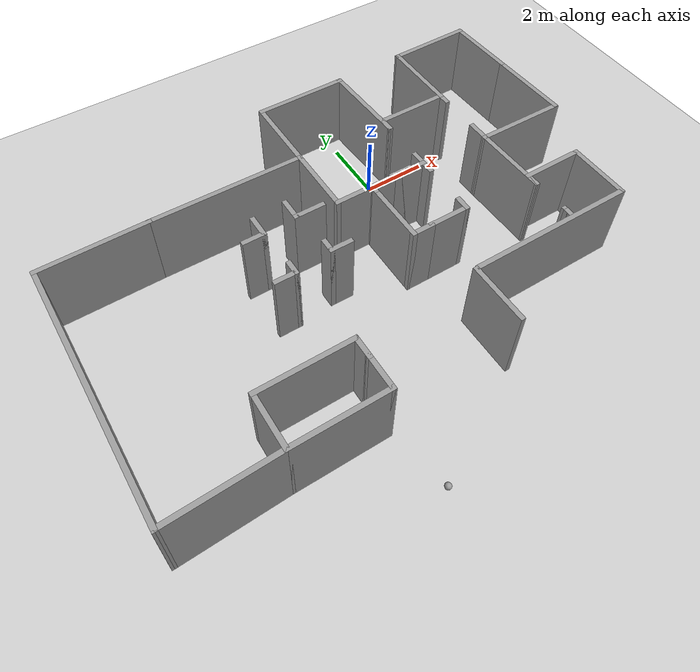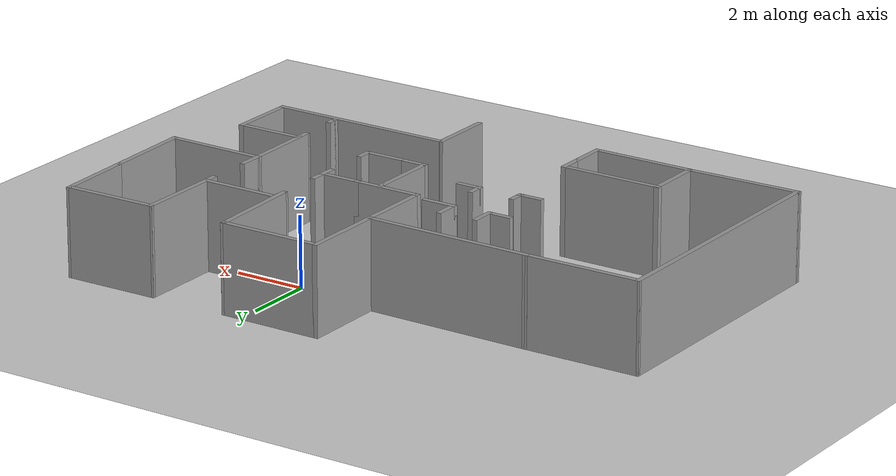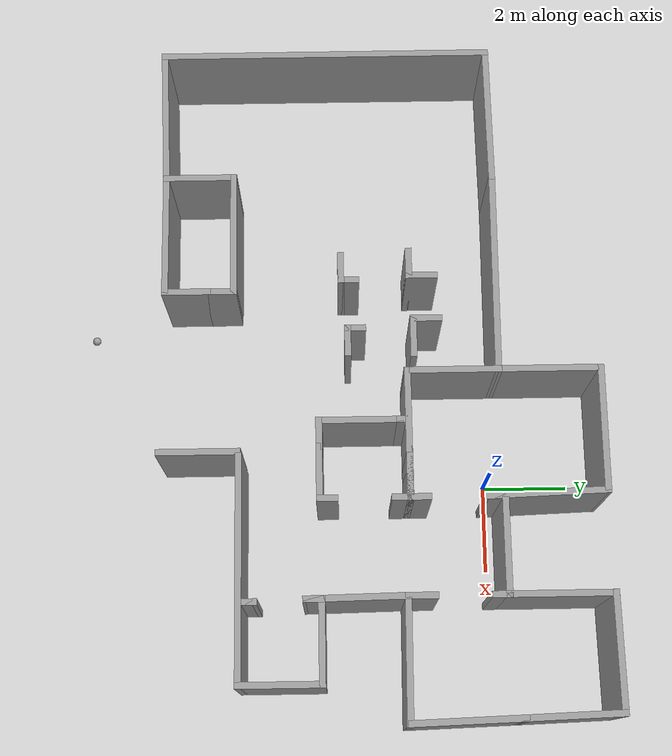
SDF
<sdf version="1.6">
 <world name="default">
  <light name="sun" type="directional">
   <pose>0 0 10 0 -0 0</pose>
   <diffuse>0.8 0.8 0.8 1</diffuse>
   <specular>0.2 0.2 0.2 1</specular>
   <attenuation>
    <range>1000</range>
    <constant>0.9</constant>
    <linear>0.01</linear>
    <quadratic>0.001</quadratic>
   </attenuation>
   <direction>-0.5 0.1 -0.9</direction>
  </light>
  <model name="ground_plane">
   <static>1</static>
   <link name="link">
    <collision name="collision">
     <geometry><plane><normal>0 0 1</normal><size>100 100</size></plane></geometry>
     <surface>
      <contact><collide_bitmask>65535</collide_bitmask></contact>
      <friction><ode><mu>100</mu><mu2>50</mu2></ode></friction>
     </surface>
    </collision>
    <visual name="visual">
     <cast_shadows>0</cast_shadows>
     <geometry><plane><normal>0 0 1</normal><size>100 100</size></plane></geometry>
     <material>
      <script><uri>file://media/materials/scripts/gazebo.material</uri><name>Gazebo/Grey</name></script>
     </material>
    </visual>
   </link>
  </model>
  <gravity>0 0 -9.8</gravity>
  <magnetic_field>6e-06 2.3e-05 -4.2e-05</magnetic_field>
  <atmosphere type="adiabatic"/>
  <physics name="default_physics" default="0" type="ode">
   <max_step_size>0.001</max_step_size>
   <real_time_factor>1</real_time_factor>
   <real_time_update_rate>1000</real_time_update_rate>
  </physics>
  <scene><ambient>0.4 0.4 0.4 1</ambient><background>0.7 0.7 0.7 1</background><shadows>1</shadows></scene>
  <audio><device>default</device></audio>
  <spherical_coordinates>
   <surface_model>EARTH_WGS84</surface_model>
   <latitude_deg>0</latitude_deg>
   <longitude_deg>0</longitude_deg>
   <elevation>0</elevation>
   <heading_deg>0</heading_deg>
  </spherical_coordinates>
  <model name="room1">
   <pose>-2.39226 -2.438 0 0 -0 0</pose>
   <link name="Wall_10">
    <collision name="Wall_10_Collision">
     <geometry><box><size>3 0.15 2.5</size></box></geometry>
     <pose>0 0 1.25 0 -0 0</pose>
    </collision>
    <visual name="Wall_10_Visual">
     <pose>0 0 1.25 0 -0 0</pose>
     <geometry><box><size>3 0.15 2.5</size></box></geometry>
     <material>
      <script><uri>file://media/materials/scripts/gazebo.material</uri><name>Gazebo/Grey</name></script>
      <ambient>1 1 1 1</ambient>
     </material>
     <meta><layer>0</layer></meta>
    </visual>
    <pose>-3.34611 -3.4198 0 0 -0 0</pose>
   </link>
   <link name="Wall_100">
    <collision name="Wall_100_Collision">
     <geometry><box><size>3 0.15 2.5</size></box></geometry>
     <pose>0 0 1.25 0 -0 0</pose>
    </collision>
    <visual name="Wall_100_Visual">
     <pose>0 0 1.25 0 -0 0</pose>
     <geometry><box><size>3 0.15 2.5</size></box></geometry>
     <material>
      <script><uri>file://media/materials/scripts/gazebo.material</uri><name>Gazebo/Grey</name></script>
      <ambient>1 1 1 1</ambient>
     </material>
     <meta><layer>0</layer></meta>
    </visual>
    <pose>-3.34611 -5.0198 0 0 -0 0</pose>
   </link>
   <link name="Wall_101">
    <collision name="Wall_101_Collision">
     <geometry><box><size>1.15 0.15 2.5</size></box></geometry>
     <pose>0 0 1.25 0 -0 0</pose>
    </collision>
    <visual name="Wall_101_Visual">
     <pose>0 0 1.25 0 -0 0</pose>
     <geometry><box><size>1.15 0.15 2.5</size></box></geometry>
     <material>
      <script><uri>file://media/materials/scripts/gazebo.material</uri><name>Gazebo/Grey</name></script>
      <ambient>1 1 1 1</ambient>
     </material>
     <meta><layer>0</layer></meta>
    </visual>
    <pose>-1.92111 -4.5198 0 0 -0 1.5708</pose>
   </link>
   <link name="Wall_103">
    <collision name="Wall_103_Collision">
     <geometry><box><size>4.90013 0.15 2.5</size></box></geometry>
     <pose>0 0 1.25 0 -0 0</pose>
    </collision>
    <visual name="Wall_103_Visual">
     <pose>0 0 1.25 0 -0 0</pose>
     <geometry><box><size>4.90013 0.15 2.5</size></box></geometry>
     <material>
      <script><uri>file://media/materials/scripts/gazebo.material</uri><name>Gazebo/Grey</name></script>
      <ambient>1 1 1 1</ambient>
     </material>
     <meta><layer>0</layer></meta>
    </visual>
    <pose>-2.33297 2.70219 0 0 -0 -0.007364</pose>
   </link>
   <link name="Wall_11">
    <collision name="Wall_11_Collision">
     <geometry><box><size>0.75 0.15 2.5</size></box></geometry>
     <pose>0 0 1.25 0 -0 0</pose>
    </collision>
    <visual name="Wall_11_Visual">
     <pose>0 0 1.25 0 -0 0</pose>
     <geometry><box><size>0.75 0.15 2.5</size></box></geometry>
     <material>
      <script><uri>file://media/materials/scripts/gazebo.material</uri><name>Gazebo/Grey</name></script>
      <ambient>1 1 1 1</ambient>
     </material>
     <meta><layer>0</layer></meta>
    </visual>
    <pose>-1.92111 -3.7198 0 0 -0 -1.5708</pose>
   </link>
   <link name="Wall_16">
    <collision name="Wall_16_Collision">
     <geometry><box><size>7.93882 0.15 2.5</size></box></geometry>
     <pose>0 0 1.25 0 -0 0</pose>
    </collision>
    <visual name="Wall_16_Visual">
     <pose>0 0 1.25 0 -0 0</pose>
     <geometry><box><size>7.93882 0.15 2.5</size></box></geometry>
     <material>
      <script><uri>file://media/materials/scripts/gazebo.material</uri><name>Gazebo/Grey</name></script>
      <ambient>1 1 1 1</ambient>
     </material>
     <meta><layer>0</layer></meta>
    </visual>
    <pose>-7.95796 -1.20971 0 0 -0 1.5708</pose>
   </link>
   <link name="Wall_17">
    <collision name="Wall_17_Collision">
     <geometry><box><size>3.40019 0.15 2.5</size></box></geometry>
     <pose>0 0 1.25 0 -0 0</pose>
    </collision>
    <visual name="Wall_17_Visual">
     <pose>0 0 1.25 0 -0 0</pose>
     <geometry><box><size>3.40019 0.15 2.5</size></box></geometry>
     <material>
      <script><uri>file://media/materials/scripts/gazebo.material</uri><name>Gazebo/Grey</name></script>
      <ambient>1 1 1 1</ambient>
     </material>
     <meta><layer>0</layer></meta>
    </visual>
    <pose>-6.33296 2.70219 0 0 -0 0.010763</pose>
   </link>
   <link name="Wall_19">
    <collision name="Wall_19_Collision">
     <geometry><box><size>1.75 0.15 2.5</size></box></geometry>
     <pose>0 0 1.25 0 -0 0</pose>
    </collision>
    <visual name="Wall_19_Visual">
     <pose>0 0 1.25 0 -0 0</pose>
     <geometry><box><size>1.75 0.15 2.5</size></box></geometry>
     <material>
      <script><uri>file://media/materials/scripts/gazebo.material</uri><name>Gazebo/Grey</name></script>
      <ambient>1 1 1 1</ambient>
     </material>
     <meta><layer>0</layer></meta>
    </visual>
    <pose>-4.77111 -4.2198 0 0 -0 -1.5708</pose>
   </link>
   <link name="Wall_23">
    <collision name="Wall_23_Collision">
     <geometry><box><size>2 0.15 2.5</size></box></geometry>
     <pose>0 0 1.25 0 -0 0</pose>
    </collision>
    <visual name="Wall_23_Visual">
     <pose>0 0 1.25 0 -0 0</pose>
     <geometry><box><size>2 0.15 2.5</size></box></geometry>
     <material>
      <script><uri>file://media/materials/scripts/gazebo.material</uri><name>Gazebo/Grey</name></script>
      <ambient>1 1 1 1</ambient>
     </material>
     <meta><layer>0</layer></meta>
    </visual>
    <pose>6.1676 -1.44342 0 0 -0 0</pose>
   </link>
   <link name="Wall_24">
    <collision name="Wall_24_Collision">
     <geometry><box><size>2 0.15 2.5</size></box></geometry>
     <pose>0 0 1.25 0 -0 0</pose>
    </collision>
    <visual name="Wall_24_Visual">
     <pose>0 0 1.25 0 -0 0</pose>
     <geometry><box><size>2 0.15 2.5</size></box></geometry>
     <material>
      <script><uri>file://media/materials/scripts/gazebo.material</uri><name>Gazebo/Grey</name></script>
      <ambient>1 1 1 1</ambient>
     </material>
     <meta><layer>0</layer></meta>
    </visual>
    <pose>7.0926 -2.36842 0 0 -0 -1.5708</pose>
   </link>
   <link name="Wall_25">
    <collision name="Wall_25_Collision">
     <geometry><box><size>5.25 0.15 2.5</size></box></geometry>
     <pose>0 0 1.25 0 -0 0</pose>
    </collision>
    <visual name="Wall_25_Visual">
     <pose>0 0 1.25 0 -0 0</pose>
     <geometry><box><size>5.25 0.15 2.5</size></box></geometry>
     <material>
      <script><uri>file://media/materials/scripts/gazebo.material</uri><name>Gazebo/Grey</name></script>
      <ambient>1 1 1 1</ambient>
     </material>
     <meta><layer>0</layer></meta>
    </visual>
    <pose>4.5426 -3.29342 0 0 -0 3.14159</pose>
   </link>
   <link name="Wall_27">
    <collision name="Wall_27_Collision">
     <geometry><box><size>0.5 0.15 2.5</size></box></geometry>
     <pose>0 0 1.25 0 -0 0</pose>
    </collision>
    <visual name="Wall_27_Visual">
     <pose>0 0 1.25 0 -0 0</pose>
     <geometry><box><size>0.5 0.15 2.5</size></box></geometry>
     <material>
      <script><uri>file://media/materials/scripts/gazebo.material</uri><name>Gazebo/Grey</name></script>
      <ambient>1 1 1 1</ambient>
     </material>
     <meta><layer>0</layer></meta>
    </visual>
    <pose>5.2426 -1.61842 0 0 -0 -1.5708</pose>
   </link>
   <link name="Wall_33">
    <collision name="Wall_33_Collision">
     <geometry><box><size>0.25 0.15 2.5</size></box></geometry>
     <pose>0 0 1.25 0 -0 0</pose>
    </collision>
    <visual name="Wall_33_Visual">
     <pose>0 0 1.25 0 -0 0</pose>
     <geometry><box><size>0.25 0.15 2.5</size></box></geometry>
     <material>
      <script><uri>file://media/materials/scripts/gazebo.material</uri><name>Gazebo/Grey</name></script>
      <ambient>1 1 1 1</ambient>
     </material>
     <meta><layer>0</layer></meta>
    </visual>
    <pose>5.28567 -2.99757 0 0 -0 -1.5708</pose>
   </link>
   <link name="Wall_34">
    <collision name="Wall_34_Collision">
     <geometry><box><size>0.25 0.15 2.5</size></box></geometry>
     <pose>0 0 1.25 0 -0 0</pose>
    </collision>
    <visual name="Wall_34_Visual">
     <pose>0 0 1.25 0 -0 0</pose>
     <geometry><box><size>0.25 0.15 2.5</size></box></geometry>
     <material>
      <script><uri>file://media/materials/scripts/gazebo.material</uri><name>Gazebo/Grey</name></script>
      <ambient>1 1 1 1</ambient>
     </material>
     <meta><layer>0</layer></meta>
    </visual>
    <pose>5.28567 -3.09757 0 0 -0 -1.5708</pose>
   </link>
   <link name="Wall_36">
    <collision name="Wall_36_Collision">
     <geometry><box><size>2.41743 0.15 2.5</size></box></geometry>
     <pose>0 0 1.25 0 -0 0</pose>
    </collision>
    <visual name="Wall_36_Visual">
     <pose>0 0 1.25 0 -0 0</pose>
     <geometry><box><size>2.41743 0.15 2.5</size></box></geometry>
     <material>
      <script><uri>file://media/materials/scripts/gazebo.material</uri><name>Gazebo/Grey</name></script>
      <ambient>1 1 1 1</ambient>
     </material>
     <meta><layer>0</layer></meta>
    </visual>
    <pose>5.22138 -0.659903 0 0 -0 1.58952</pose>
   </link>
   <link name="Wall_37">
    <collision name="Wall_37_Collision">
     <geometry><box><size>2.90786 0.15 2.5</size></box></geometry>
     <pose>0 0 1.25 0 -0 0</pose>
    </collision>
    <visual name="Wall_37_Visual">
     <pose>0 0 1.25 0 -0 0</pose>
     <geometry><box><size>2.90786 0.15 2.5</size></box></geometry>
     <material>
      <script><uri>file://media/materials/scripts/gazebo.material</uri><name>Gazebo/Grey</name></script>
      <ambient>1 1 1 1</ambient>
     </material>
     <meta><layer>0</layer></meta>
    </visual>
    <pose>6.57882 0.460494 0 0 -0 -0.009517</pose>
   </link>
   <link name="Wall_38">
    <collision name="Wall_38_Collision">
     <geometry><box><size>2.63851 0.15 2.5</size></box></geometry>
     <pose>0 0 1.25 0 -0 0</pose>
    </collision>
    <visual name="Wall_38_Visual">
     <pose>0 0 1.25 0 -0 0</pose>
     <geometry><box><size>2.63851 0.15 2.5</size></box></geometry>
     <material>
      <script><uri>file://media/materials/scripts/gazebo.material</uri><name>Gazebo/Grey</name></script>
      <ambient>1 1 1 1</ambient>
     </material>
     <meta><layer>0</layer></meta>
    </visual>
    <pose>7.91637 1.71106 0 0 -0 1.60384</pose>
   </link>
   <link name="Wall_44">
    <collision name="Wall_44_Collision">
     <geometry><box><size>1.93882 0.15 2.5</size></box></geometry>
     <pose>0 0 1.25 0 -0 0</pose>
    </collision>
    <visual name="Wall_44_Visual">
     <pose>0 0 1.25 0 -0 0</pose>
     <geometry><box><size>1.93882 0.15 2.5</size></box></geometry>
     <material>
      <script><uri>file://media/materials/scripts/gazebo.material</uri><name>Gazebo/Grey</name></script>
      <ambient>1 1 1 1</ambient>
     </material>
     <meta><layer>0</layer></meta>
    </visual>
    <pose>1.89203 -4.20971 0 0 -0 1.5708</pose>
   </link>
   <link name="Wall_48">
    <collision name="Wall_48_Collision">
     <geometry><box><size>1.34252 0.15 2.5</size></box></geometry>
     <pose>0 0 1.25 0 -0 0</pose>
    </collision>
    <visual name="Wall_48_Visual">
     <pose>0 0 1.25 0 -0 0</pose>
     <geometry><box><size>1.34252 0.15 2.5</size></box></geometry>
     <material>
      <script><uri>file://media/materials/scripts/gazebo.material</uri><name>Gazebo/Grey</name></script>
      <ambient>1 1 1 1</ambient>
     </material>
     <meta><layer>0</layer></meta>
    </visual>
    <pose>2.39577 -1.4653 0 0 -0 0</pose>
   </link>
   <link name="Wall_49">
    <collision name="Wall_49_Collision">
     <geometry><box><size>0.5 0.15 2.5</size></box></geometry>
     <pose>0 0 1.25 0 -0 0</pose>
    </collision>
    <visual name="Wall_49_Visual">
     <pose>0 0 1.25 0 -0 0</pose>
     <geometry><box><size>0.5 0.15 2.5</size></box></geometry>
     <material>
      <script><uri>file://media/materials/scripts/gazebo.material</uri><name>Gazebo/Grey</name></script>
      <ambient>1 1 1 1</ambient>
     </material>
     <meta><layer>0</layer></meta>
    </visual>
    <pose>2.99203 -1.2903 0 0 -0 1.5708</pose>
   </link>
   <link name="Wall_51">
    <collision name="Wall_51_Collision">
     <geometry><box><size>0.5 0.15 2.5</size></box></geometry>
     <pose>0 0 1.25 0 -0 0</pose>
    </collision>
    <visual name="Wall_51_Visual">
     <pose>0 0 1.25 0 -0 0</pose>
     <geometry><box><size>0.5 0.15 2.5</size></box></geometry>
     <material>
      <script><uri>file://media/materials/scripts/gazebo.material</uri><name>Gazebo/Grey</name></script>
      <ambient>1 1 1 1</ambient>
     </material>
     <meta><layer>0</layer></meta>
    </visual>
    <pose>2.99203 0.409701 0 0 -0 1.5708</pose>
   </link>
   <link name="Wall_52">
    <collision name="Wall_52_Collision">
     <geometry><box><size>1.25 0.15 2.5</size></box></geometry>
     <pose>0 0 1.25 0 -0 0</pose>
    </collision>
    <visual name="Wall_52_Visual">
     <pose>0 0 1.25 0 -0 0</pose>
     <geometry><box><size>1.25 0.15 2.5</size></box></geometry>
     <material>
      <script><uri>file://media/materials/scripts/gazebo.material</uri><name>Gazebo/Grey</name></script>
      <ambient>1 1 1 1</ambient>
     </material>
     <meta><layer>0</layer></meta>
    </visual>
    <pose>2.44204 0.584701 0 0 -0 3.14159</pose>
   </link>
   <link name="Wall_53">
    <collision name="Wall_53_Collision">
     <geometry><box><size>1.25 0.15 2.5</size></box></geometry>
     <pose>0 0 1.25 0 -0 0</pose>
    </collision>
    <visual name="Wall_53_Visual">
     <pose>0 0 1.25 0 -0 0</pose>
     <geometry><box><size>1.25 0.15 2.5</size></box></geometry>
     <material>
      <script><uri>file://media/materials/scripts/gazebo.material</uri><name>Gazebo/Grey</name></script>
      <ambient>1 1 1 1</ambient>
     </material>
     <meta><layer>0</layer></meta>
    </visual>
    <pose>2.44204 0.584701 0 0 -0 0</pose>
   </link>
   <link name="Wall_54">
    <collision name="Wall_54_Collision">
     <geometry><box><size>0.5532 0.15 2.5</size></box></geometry>
     <pose>0 0 1.25 0 -0 0</pose>
    </collision>
    <visual name="Wall_54_Visual">
     <pose>0 0 1.25 0 -0 0</pose>
     <geometry><box><size>0.5532 0.15 2.5</size></box></geometry>
     <material>
      <script><uri>file://media/materials/scripts/gazebo.material</uri><name>Gazebo/Grey</name></script>
      <ambient>1 1 1 1</ambient>
     </material>
     <meta><layer>0</layer></meta>
    </visual>
    <pose>2.99203 0.786301 0 0 -0 1.5708</pose>
   </link>
   <link name="Wall_56">
    <collision name="Wall_56_Collision">
     <geometry><box><size>0.4468 0.15 2.5</size></box></geometry>
     <pose>0 0 1.25 0 -0 0</pose>
    </collision>
    <visual name="Wall_56_Visual">
     <pose>0 0 1.25 0 -0 0</pose>
     <geometry><box><size>0.4468 0.15 2.5</size></box></geometry>
     <material>
      <script><uri>file://media/materials/scripts/gazebo.material</uri><name>Gazebo/Grey</name></script>
      <ambient>1 1 1 1</ambient>
     </material>
     <meta><layer>0</layer></meta>
    </visual>
    <pose>2.99203 2.4863 0 0 -0 1.5708</pose>
   </link>
   <link name="Wall_60">
    <collision name="Wall_60_Collision">
     <geometry><box><size>2 0.15 2.5</size></box></geometry>
     <pose>0 0 1.25 0 -0 0</pose>
    </collision>
    <visual name="Wall_60_Visual">
     <pose>0 0 1.25 0 -0 0</pose>
     <geometry><box><size>2 0.15 2.5</size></box></geometry>
     <material>
      <script><uri>file://media/materials/scripts/gazebo.material</uri><name>Gazebo/Grey</name></script>
      <ambient>1 1 1 1</ambient>
     </material>
     <meta><layer>0</layer></meta>
    </visual>
    <pose>0.967034 0.584701 0 0 -0 3.14159</pose>
   </link>
   <link name="Wall_61">
    <collision name="Wall_61_Collision">
     <geometry><box><size>2.25 0.15 2.5</size></box></geometry>
     <pose>0 0 1.25 0 -0 0</pose>
    </collision>
    <visual name="Wall_61_Visual">
     <pose>0 0 1.25 0 -0 0</pose>
     <geometry><box><size>2.25 0.15 2.5</size></box></geometry>
     <material>
      <script><uri>file://media/materials/scripts/gazebo.material</uri><name>Gazebo/Grey</name></script>
      <ambient>1 1 1 1</ambient>
     </material>
     <meta><layer>0</layer></meta>
    </visual>
    <pose>0.042035 1.6347 0 0 -0 1.5708</pose>
   </link>
   <link name="Wall_62">
    <collision name="Wall_62_Collision">
     <geometry><box><size>2.5 0.15 2.5</size></box></geometry>
     <pose>0 0 1.25 0 -0 0</pose>
    </collision>
    <visual name="Wall_62_Visual">
     <pose>0 0 1.25 0 -0 0</pose>
     <geometry><box><size>2.5 0.15 2.5</size></box></geometry>
     <material>
      <script><uri>file://media/materials/scripts/gazebo.material</uri><name>Gazebo/Grey</name></script>
      <ambient>1 1 1 1</ambient>
     </material>
     <meta><layer>0</layer></meta>
    </visual>
    <pose>0.042035 3.8597 0 0 -0 1.5708</pose>
   </link>
   <link name="Wall_63">
    <collision name="Wall_63_Collision">
     <geometry><box><size>3 0.15 2.5</size></box></geometry>
     <pose>0 0 1.25 0 -0 0</pose>
    </collision>
    <visual name="Wall_63_Visual">
     <pose>0 0 1.25 0 -0 0</pose>
     <geometry><box><size>3 0.15 2.5</size></box></geometry>
     <material>
      <script><uri>file://media/materials/scripts/gazebo.material</uri><name>Gazebo/Grey</name></script>
      <ambient>1 1 1 1</ambient>
     </material>
     <meta><layer>0</layer></meta>
    </visual>
    <pose>1.46704 5.0347 0 0 -0 0</pose>
   </link>
   <link name="Wall_68">
    <collision name="Wall_68_Collision">
     <geometry><box><size>0.75 0.15 2.5</size></box></geometry>
     <pose>0 0 1.25 0 -0 0</pose>
    </collision>
    <visual name="Wall_68_Visual">
     <pose>0 0 1.25 0 -0 0</pose>
     <geometry><box><size>0.75 0.15 2.5</size></box></geometry>
     <material>
      <script><uri>file://media/materials/scripts/gazebo.material</uri><name>Gazebo/Grey</name></script>
      <ambient>1 1 1 1</ambient>
     </material>
     <meta><layer>0</layer></meta>
    </visual>
    <pose>1.49951 -1.4653 0 0 -0 3.14159</pose>
   </link>
   <link name="Wall_69">
    <collision name="Wall_69_Collision">
     <geometry><box><size>2 0.15 2.5</size></box></geometry>
     <pose>0 0 1.25 0 -0 0</pose>
    </collision>
    <visual name="Wall_69_Visual">
     <pose>0 0 1.25 0 -0 0</pose>
     <geometry><box><size>2 0.15 2.5</size></box></geometry>
     <material>
      <script><uri>file://media/materials/scripts/gazebo.material</uri><name>Gazebo/Grey</name></script>
      <ambient>1 1 1 1</ambient>
     </material>
     <meta><layer>0</layer></meta>
    </visual>
    <pose>1.19951 -0.540299 0 0 -0 1.5708</pose>
   </link>
   <link name="Wall_70">
    <collision name="Wall_70_Collision">
     <geometry><box><size>0.25 0.15 2.5</size></box></geometry>
     <pose>0 0 1.25 0 -0 0</pose>
    </collision>
    <visual name="Wall_70_Visual">
     <pose>0 0 1.25 0 -0 0</pose>
     <geometry><box><size>0.25 0.15 2.5</size></box></geometry>
     <material>
      <script><uri>file://media/materials/scripts/gazebo.material</uri><name>Gazebo/Grey</name></script>
      <ambient>1 1 1 1</ambient>
     </material>
     <meta><layer>0</layer></meta>
    </visual>
    <pose>1.19951 0.434701 0 0 -0 1.5708</pose>
   </link>
   <link name="Wall_72">
    <collision name="Wall_72_Collision">
     <geometry><box><size>2.84865 0.15 2.5</size></box></geometry>
     <pose>0 0 1.25 0 -0 0</pose>
    </collision>
    <visual name="Wall_72_Visual">
     <pose>0 0 1.25 0 -0 0</pose>
     <geometry><box><size>2.84865 0.15 2.5</size></box></geometry>
     <material>
      <script><uri>file://media/materials/scripts/gazebo.material</uri><name>Gazebo/Grey</name></script>
      <ambient>1 1 1 1</ambient>
     </material>
     <meta><layer>0</layer></meta>
    </visual>
    <pose>2.94204 3.6863 0 0 -0 -1.53373</pose>
   </link>
   <link name="Wall_76">
    <collision name="Wall_76_Collision">
     <geometry><box><size>0.459773 0.15 2.5</size></box></geometry>
     <pose>0 0 1.25 0 -0 0</pose>
    </collision>
    <visual name="Wall_76_Visual">
     <pose>0 0 1.25 0 -0 0</pose>
     <geometry><box><size>0.459773 0.15 2.5</size></box></geometry>
     <material>
      <script><uri>file://media/materials/scripts/gazebo.material</uri><name>Gazebo/Grey</name></script>
      <ambient>1 1 1 1</ambient>
     </material>
     <meta><layer>0</layer></meta>
    </visual>
    <pose>5.20015 2.55839 0 0 -0 -1.5708</pose>
   </link>
   <link name="Wall_78">
    <collision name="Wall_78_Collision">
     <geometry><box><size>0.75 0.15 2.5</size></box></geometry>
     <pose>0 0 1.25 0 -0 0</pose>
    </collision>
    <visual name="Wall_78_Visual">
     <pose>0 0 1.25 0 -0 0</pose>
     <geometry><box><size>0.75 0.15 2.5</size></box></geometry>
     <material>
      <script><uri>file://media/materials/scripts/gazebo.material</uri><name>Gazebo/Grey</name></script>
      <ambient>1 1 1 1</ambient>
     </material>
     <meta><layer>0</layer></meta>
    </visual>
    <pose>5.20015 0.773615 0 0 -0 -1.5708</pose>
   </link>
   <link name="Wall_80">
    <collision name="Wall_80_Collision">
     <geometry><box><size>2.25 0.15 2.5</size></box></geometry>
     <pose>0 0 1.25 0 -0 0</pose>
    </collision>
    <visual name="Wall_80_Visual">
     <pose>0 0 1.25 0 -0 0</pose>
     <geometry><box><size>2.25 0.15 2.5</size></box></geometry>
     <material>
      <script><uri>file://media/materials/scripts/gazebo.material</uri><name>Gazebo/Grey</name></script>
      <ambient>1 1 1 1</ambient>
     </material>
     <meta><layer>0</layer></meta>
    </visual>
    <pose>4.15015 2.71327 0 0 -0 3.14159</pose>
   </link>
   <link name="Wall_82">
    <collision name="Wall_82_Collision">
     <geometry><box><size>2.5 0.15 2.5</size></box></geometry>
     <pose>0 0 1.25 0 -0 0</pose>
    </collision>
    <visual name="Wall_82_Visual">
     <pose>0 0 1.25 0 -0 0</pose>
     <geometry><box><size>2.5 0.15 2.5</size></box></geometry>
     <material>
      <script><uri>file://media/materials/scripts/gazebo.material</uri><name>Gazebo/Grey</name></script>
      <ambient>1 1 1 1</ambient>
     </material>
     <meta><layer>0</layer></meta>
    </visual>
    <pose>5.20015 3.88827 0 0 -0 1.5708</pose>
   </link>
   <link name="Wall_83">
    <collision name="Wall_83_Collision">
     <geometry><box><size>2.75031 0.15 2.5</size></box></geometry>
     <pose>0 0 1.25 0 -0 0</pose>
    </collision>
    <visual name="Wall_83_Visual">
     <pose>0 0 1.25 0 -0 0</pose>
     <geometry><box><size>2.75031 0.15 2.5</size></box></geometry>
     <material>
      <script><uri>file://media/materials/scripts/gazebo.material</uri><name>Gazebo/Grey</name></script>
      <ambient>1 1 1 1</ambient>
     </material>
     <meta><layer>0</layer></meta>
    </visual>
    <pose>6.50016 5.08339 0 0 -0 0.015471</pose>
   </link>
   <link name="Wall_84">
    <collision name="Wall_84_Collision">
     <geometry><box><size>2.30018 0.15 2.5</size></box></geometry>
     <pose>0 0 1.25 0 -0 0</pose>
    </collision>
    <visual name="Wall_84_Visual">
     <pose>0 0 1.25 0 -0 0</pose>
     <geometry><box><size>2.30018 0.15 2.5</size></box></geometry>
     <material>
      <script><uri>file://media/materials/scripts/gazebo.material</uri><name>Gazebo/Grey</name></script>
      <ambient>1 1 1 1</ambient>
     </material>
     <meta><layer>0</layer></meta>
    </visual>
    <pose>7.83771 4.02907 0 0 -0 -1.53586</pose>
   </link>
   <link name="Wall_87">
    <collision name="Wall_87_Collision">
     <geometry><box><size>0.75 0.15 2.5</size></box></geometry>
     <pose>0 0 1.25 0 -0 0</pose>
    </collision>
    <visual name="Wall_87_Visual">
     <pose>0 0 1.25 0 -0 0</pose>
     <geometry><box><size>0.75 0.15 2.5</size></box></geometry>
     <material>
      <script><uri>file://media/materials/scripts/gazebo.material</uri><name>Gazebo/Grey</name></script>
      <ambient>1 1 1 1</ambient>
     </material>
     <meta><layer>0</layer></meta>
    </visual>
    <pose>-2.55528 0.679883 0 0 -0 0</pose>
   </link>
   <link name="Wall_88">
    <collision name="Wall_88_Collision">
     <geometry><box><size>0.75 0.15 2.5</size></box></geometry>
     <pose>0 0 1.25 0 -0 0</pose>
    </collision>
    <visual name="Wall_88_Visual">
     <pose>0 0 1.25 0 -0 0</pose>
     <geometry><box><size>0.75 0.15 2.5</size></box></geometry>
     <material>
      <script><uri>file://media/materials/scripts/gazebo.material</uri><name>Gazebo/Grey</name></script>
      <ambient>1 1 1 1</ambient>
     </material>
     <meta><layer>0</layer></meta>
    </visual>
    <pose>-2.25528 0.979883 0 0 -0 1.5708</pose>
   </link>
   <link name="Wall_90">
    <collision name="Wall_90_Collision">
     <geometry><box><size>0.75 0.15 2.5</size></box></geometry>
     <pose>0 0 1.25 0 -0 0</pose>
    </collision>
    <visual name="Wall_90_Visual">
     <pose>0 0 1.25 0 -0 0</pose>
     <geometry><box><size>0.75 0.15 2.5</size></box></geometry>
     <material>
      <script><uri>file://media/materials/scripts/gazebo.material</uri><name>Gazebo/Grey</name></script>
      <ambient>1 1 1 1</ambient>
     </material>
     <meta><layer>0</layer></meta>
    </visual>
    <pose>-1.20341 1.05287 0 0 -0 -1.5708</pose>
   </link>
   <link name="Wall_91">
    <collision name="Wall_91_Collision">
     <geometry><box><size>1 0.15 2.5</size></box></geometry>
     <pose>0 0 1.25 0 -0 0</pose>
    </collision>
    <visual name="Wall_91_Visual">
     <pose>0 0 1.25 0 -0 0</pose>
     <geometry><box><size>1 0.15 2.5</size></box></geometry>
     <material>
      <script><uri>file://media/materials/scripts/gazebo.material</uri><name>Gazebo/Grey</name></script>
      <ambient>1 1 1 1</ambient>
     </material>
     <meta><layer>0</layer></meta>
    </visual>
    <pose>-0.77841 0.752868 0 0 -0 0</pose>
   </link>
   <link name="Wall_93">
    <collision name="Wall_93_Collision">
     <geometry><box><size>0.75 0.15 2.5</size></box></geometry>
     <pose>0 0 1.25 0 -0 0</pose>
    </collision>
    <visual name="Wall_93_Visual">
     <pose>0 0 1.25 0 -0 0</pose>
     <geometry><box><size>0.75 0.15 2.5</size></box></geometry>
     <material>
      <script><uri>file://media/materials/scripts/gazebo.material</uri><name>Gazebo/Grey</name></script>
      <ambient>1 1 1 1</ambient>
     </material>
     <meta><layer>0</layer></meta>
    </visual>
    <pose>-2.46351 -0.910809 0 0 -0 0</pose>
   </link>
   <link name="Wall_94">
    <collision name="Wall_94_Collision">
     <geometry><box><size>0.5 0.15 2.5</size></box></geometry>
     <pose>0 0 1.25 0 -0 0</pose>
    </collision>
    <visual name="Wall_94_Visual">
     <pose>0 0 1.25 0 -0 0</pose>
     <geometry><box><size>0.5 0.15 2.5</size></box></geometry>
     <material>
      <script><uri>file://media/materials/scripts/gazebo.material</uri><name>Gazebo/Grey</name></script>
      <ambient>1 1 1 1</ambient>
     </material>
     <meta><layer>0</layer></meta>
    </visual>
    <pose>-2.16351 -0.735809 0 0 -0 1.5708</pose>
   </link>
   <link name="Wall_96">
    <collision name="Wall_96_Collision">
     <geometry><box><size>0.5 0.15 2.5</size></box></geometry>
     <pose>0 0 1.25 0 -0 0</pose>
    </collision>
    <visual name="Wall_96_Visual">
     <pose>0 0 1.25 0 -0 0</pose>
     <geometry><box><size>0.5 0.15 2.5</size></box></geometry>
     <material>
      <script><uri>file://media/materials/scripts/gazebo.material</uri><name>Gazebo/Grey</name></script>
      <ambient>1 1 1 1</ambient>
     </material>
     <meta><layer>0</layer></meta>
    </visual>
    <pose>-0.989278 -0.596365 0 0 -0 -1.5708</pose>
   </link>
   <link name="Wall_97">
    <collision name="Wall_97_Collision">
     <geometry><box><size>0.75 0.15 2.5</size></box></geometry>
     <pose>0 0 1.25 0 -0 0</pose>
    </collision>
    <visual name="Wall_97_Visual">
     <pose>0 0 1.25 0 -0 0</pose>
     <geometry><box><size>0.75 0.15 2.5</size></box></geometry>
     <material>
      <script><uri>file://media/materials/scripts/gazebo.material</uri><name>Gazebo/Grey</name></script>
      <ambient>1 1 1 1</ambient>
     </material>
     <meta><layer>0</layer></meta>
    </visual>
    <pose>-0.689278 -0.771365 0 0 -0 0</pose>
   </link>
   <link name="Wall_99">
    <collision name="Wall_99_Collision">
     <geometry><box><size>3.33797 0.15 2.5</size></box></geometry>
     <pose>0 0 1.25 0 -0 0</pose>
    </collision>
    <visual name="Wall_99_Visual">
     <pose>0 0 1.25 0 -0 0</pose>
     <geometry><box><size>3.33797 0.15 2.5</size></box></geometry>
     <material>
      <script><uri>file://media/materials/scripts/gazebo.material</uri><name>Gazebo/Grey</name></script>
      <ambient>1 1 1 1</ambient>
     </material>
     <meta><layer>0</layer></meta>
    </visual>
    <pose>-6.36454 -5.06196 0 0 -0 0.026452</pose>
   </link>
   <static>1</static>
  </model>
  <model name="my_ball">
   <link name="link">
    <inertial>
     <mass>1</mass>
     <inertia><ixx>0.1</ixx><ixy>0</ixy><ixz>0</ixz><iyy>0.1</iyy><iyz>0</iyz><izz>0.1</izz></inertia>
    </inertial>
    <visual name="visual">
     <geometry><sphere><radius>0.1</radius></sphere></geometry>
     <material>
      <script><name>Gazebo/Grey</name><uri>file://media/materials/scripts/gazebo.material</uri></script>
      <shader type="vertex"><normal_map>__default__</normal_map></shader>
      <ambient>1 1 1 1</ambient>
      <diffuse>1 1 1 1</diffuse>
      <specular>1 1 1 1</specular>
      <emissive>1 1 1 1</emissive>
     </material>
    </visual>
    <collision name="collision">
     <geometry><sphere><radius>0.1</radius></sphere></geometry>
     <surface>
      <friction>
       <ode><mu>1</mu><mu2>1</mu2><fdir1>0 0 0</fdir1><slip1>0</slip1><slip2>0</slip2></ode>
       <torsional>
        <coefficient>1</coefficient>
        <patch_radius>0</patch_radius>
        <surface_radius>0</surface_radius>
        <use_patch_radius>1</use_patch_radius>
        <ode><slip>0</slip></ode>
       </torsional>
      </friction>
      <bounce><restitution_coefficient>0</restitution_coefficient><threshold>1e+06</threshold></bounce>
      <contact>
       <collide_without_contact>0</collide_without_contact>
       <collide_without_contact_bitmask>1</collide_without_contact_bitmask>
       <collide_bitmask>1</collide_bitmask>
       <ode>
        <soft_cfm>0</soft_cfm>
        <soft_erp>0.2</soft_erp>
        <kp>1e+13</kp>
        <kd>1</kd>
        <max_vel>0.01</max_vel>
        <min_depth>0</min_depth>
       </ode>
       <bullet>
        <split_impulse>1</split_impulse>
        <split_impulse_penetration_threshold>-0.01</split_impulse_penetration_threshold>
        <soft_cfm>0</soft_cfm>
        <soft_erp>0.2</soft_erp>
        <kp>1e+13</kp>
        <kd>1</kd>
       </bullet>
      </contact>
     </surface>
    </collision>
   </link>
   <static>0</static>
   <pose>-3.85357 -9.39705 0.1 0 -0 0</pose>
  </model>
 </world>
</sdf>
